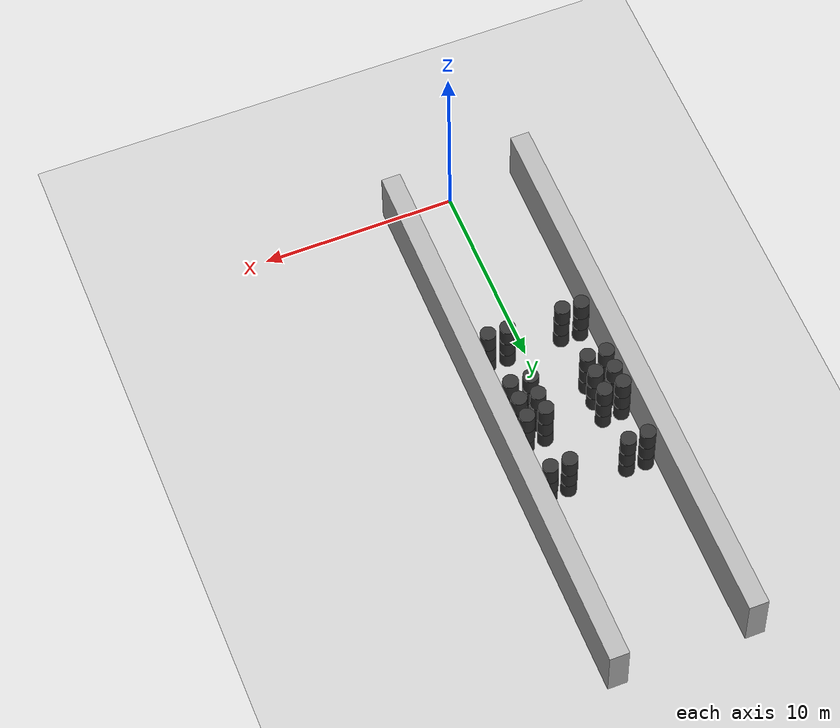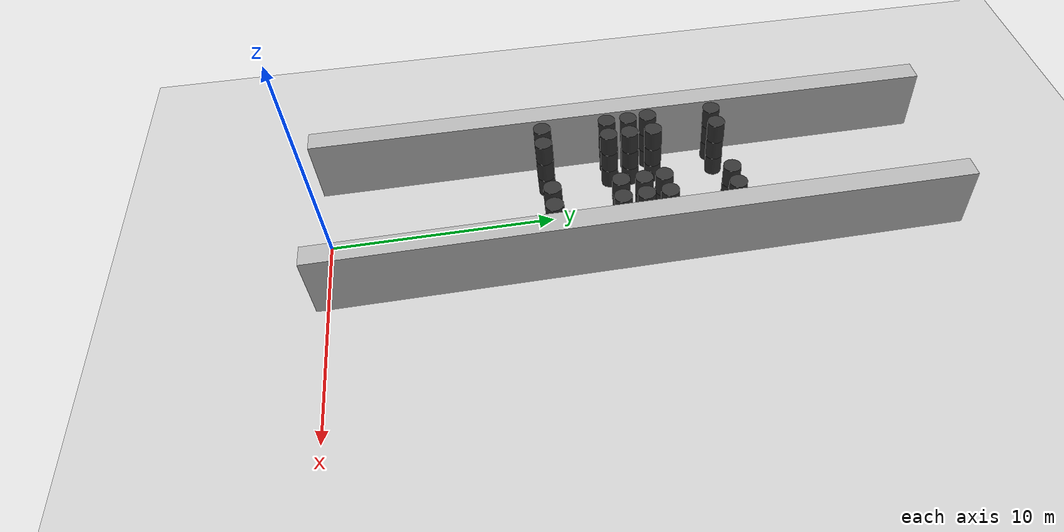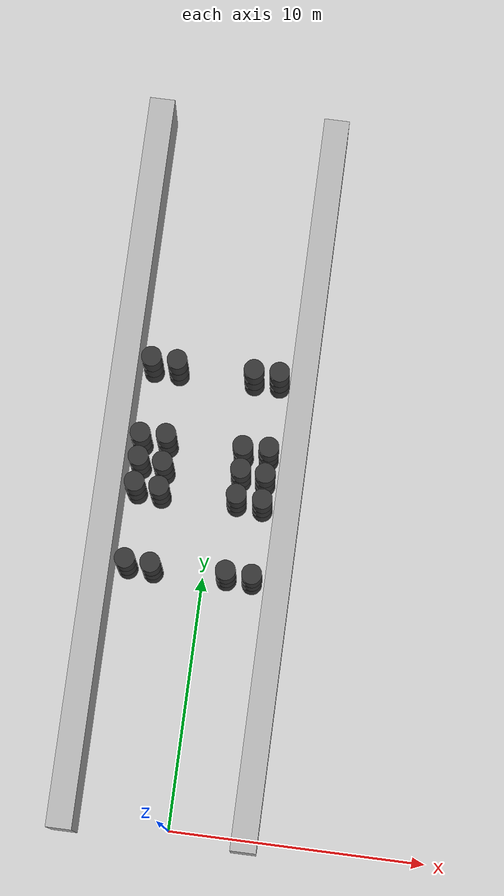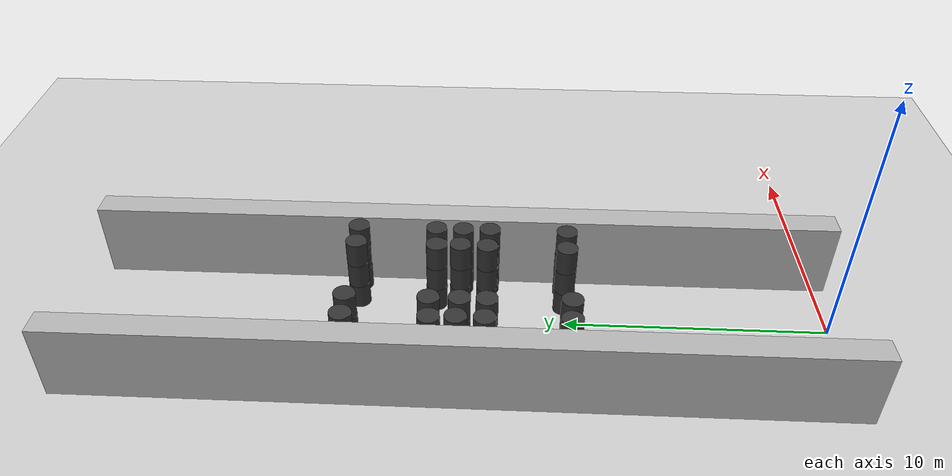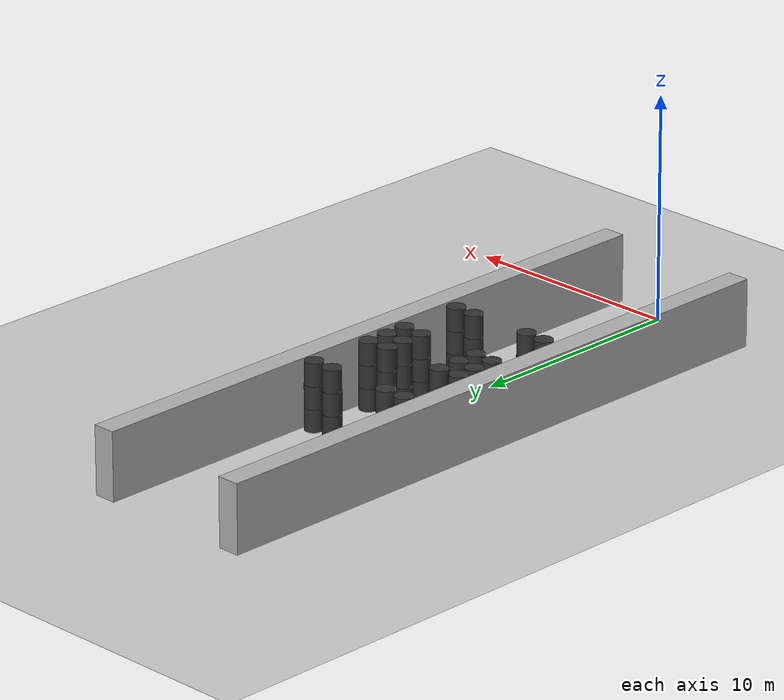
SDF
<sdf version="1.6">
 <world name="default">
  <include><uri>model://ground_plane</uri></include>
  <model name="wall_0">
   <pose frame="sim_world">-4.0 14.0 1.5 0 0 0</pose>
   <static>True</static>
   <link name="wall_0_link">
    <inertial>
     <mass>100</mass>
     <inertia>
      <ixx>0.166667</ixx>
      <ixy>0</ixy>
      <ixz>0</ixz>
      <iyy>0.166667</iyy>
      <iyz>0</iyz>
      <izz>0.166667</izz>
     </inertia>
    </inertial>
    <collision name="wall_0_collision">
     <geometry><box><size>1.0 29.0 3.0</size></box></geometry>
     <max_contacts>100</max_contacts>
    </collision>
    <visual name="wall_0_visual">
     <geometry><box><size>1.0 29.0 3.0</size></box></geometry>
     <material><ambient>0.7 0.7 0.7 1</ambient><diffuse>0.7 0.7 0.7 1</diffuse></material>
    </visual>
   </link>
  </model>
  <model name="wall_1">
   <pose frame="sim_world">3.0 14.0 1.5 0 0 0</pose>
   <static>True</static>
   <link name="wall_1_link">
    <inertial>
     <mass>100</mass>
     <inertia>
      <ixx>0.166667</ixx>
      <ixy>0</ixy>
      <ixz>0</ixz>
      <iyy>0.166667</iyy>
      <iyz>0</iyz>
      <izz>0.166667</izz>
     </inertia>
    </inertial>
    <collision name="wall_1_collision">
     <geometry><box><size>1.0 29.0 3.0</size></box></geometry>
     <max_contacts>100</max_contacts>
    </collision>
    <visual name="wall_1_visual">
     <geometry><box><size>1.0 29.0 3.0</size></box></geometry>
     <material><ambient>0.7 0.7 0.7 1</ambient><diffuse>0.7 0.7 0.7 1</diffuse></material>
    </visual>
   </link>
  </model>
  <model name="cylinder_15">
   <pose frame="sim_world">-2.95974717272 9.99762335335 0.5 0 -0 0</pose>
   <static>True</static>
   <link name="cylinder_15_link">
    <inertial>
     <mass>100</mass>
     <inertia><ixx>0.145833</ixx><ixy>0</ixy><ixz>0</ixz><iyy>0.145833</iyy><iyz>0</iyz><izz>0.125</izz></inertia>
    </inertial>
    <collision name="cylinder_15_collision">
     <geometry><cylinder><length>1.0</length><radius>0.4</radius></cylinder></geometry>
     <max_contacts>100</max_contacts>
    </collision>
    <visual name="cylinder_15_visual">
     <geometry><cylinder><length>1.0</length><radius>0.4</radius></cylinder></geometry>
     <material><ambient>0.2 0.2 0.2 1</ambient><diffuse>0.2 0.2 0.2 1</diffuse></material>
    </visual>
   </link>
  </model>
  <model name="cylinder_16">
   <pose frame="sim_world">-2.96733454405 10.0077599874 1.5 0 -0 0</pose>
   <static>True</static>
   <link name="cylinder_16_link">
    <inertial>
     <mass>100</mass>
     <inertia><ixx>0.145833</ixx><ixy>0</ixy><ixz>0</ixz><iyy>0.145833</iyy><iyz>0</iyz><izz>0.125</izz></inertia>
    </inertial>
    <collision name="cylinder_16_collision">
     <geometry><cylinder><length>1.0</length><radius>0.4</radius></cylinder></geometry>
     <max_contacts>100</max_contacts>
    </collision>
    <visual name="cylinder_16_visual">
     <geometry><cylinder><length>1.0</length><radius>0.4</radius></cylinder></geometry>
     <material><ambient>0.2 0.2 0.2 1</ambient><diffuse>0.2 0.2 0.2 1</diffuse></material>
    </visual>
   </link>
  </model>
  <model name="cylinder_17">
   <pose frame="sim_world">-2.9538205058 10.0074615674 2.5 0 -0 0</pose>
   <static>True</static>
   <link name="cylinder_17_link">
    <inertial>
     <mass>100</mass>
     <inertia><ixx>0.145833</ixx><ixy>0</ixy><ixz>0</ixz><iyy>0.145833</iyy><iyz>0</iyz><izz>0.125</izz></inertia>
    </inertial>
    <collision name="cylinder_17_collision">
     <geometry><cylinder><length>1.0</length><radius>0.4</radius></cylinder></geometry>
     <max_contacts>100</max_contacts>
    </collision>
    <visual name="cylinder_17_visual">
     <geometry><cylinder><length>1.0</length><radius>0.4</radius></cylinder></geometry>
     <material><ambient>0.2 0.2 0.2 1</ambient><diffuse>0.2 0.2 0.2 1</diffuse></material>
    </visual>
   </link>
  </model>
  <model name="cylinder_18">
   <pose frame="sim_world">-2.99630284277 13.0216252734 0.5 0 -0 0</pose>
   <static>True</static>
   <link name="cylinder_18_link">
    <inertial>
     <mass>100</mass>
     <inertia><ixx>0.145833</ixx><ixy>0</ixy><ixz>0</ixz><iyy>0.145833</iyy><iyz>0</iyz><izz>0.125</izz></inertia>
    </inertial>
    <collision name="cylinder_18_collision">
     <geometry><cylinder><length>1.0</length><radius>0.4</radius></cylinder></geometry>
     <max_contacts>100</max_contacts>
    </collision>
    <visual name="cylinder_18_visual">
     <geometry><cylinder><length>1.0</length><radius>0.4</radius></cylinder></geometry>
     <material><ambient>0.2 0.2 0.2 1</ambient><diffuse>0.2 0.2 0.2 1</diffuse></material>
    </visual>
   </link>
  </model>
  <model name="cylinder_19">
   <pose frame="sim_world">-3.01050325647 13.0122026184 1.5 0 -0 0</pose>
   <static>True</static>
   <link name="cylinder_19_link">
    <inertial>
     <mass>100</mass>
     <inertia><ixx>0.145833</ixx><ixy>0</ixy><ixz>0</ixz><iyy>0.145833</iyy><iyz>0</iyz><izz>0.125</izz></inertia>
    </inertial>
    <collision name="cylinder_19_collision">
     <geometry><cylinder><length>1.0</length><radius>0.4</radius></cylinder></geometry>
     <max_contacts>100</max_contacts>
    </collision>
    <visual name="cylinder_19_visual">
     <geometry><cylinder><length>1.0</length><radius>0.4</radius></cylinder></geometry>
     <material><ambient>0.2 0.2 0.2 1</ambient><diffuse>0.2 0.2 0.2 1</diffuse></material>
    </visual>
   </link>
  </model>
  <model name="cylinder_20">
   <pose frame="sim_world">-2.99424971212 13.0228038659 2.5 0 -0 0</pose>
   <static>True</static>
   <link name="cylinder_20_link">
    <inertial>
     <mass>100</mass>
     <inertia><ixx>0.145833</ixx><ixy>0</ixy><ixz>0</ixz><iyy>0.145833</iyy><iyz>0</iyz><izz>0.125</izz></inertia>
    </inertial>
    <collision name="cylinder_20_collision">
     <geometry><cylinder><length>1.0</length><radius>0.4</radius></cylinder></geometry>
     <max_contacts>100</max_contacts>
    </collision>
    <visual name="cylinder_20_visual">
     <geometry><cylinder><length>1.0</length><radius>0.4</radius></cylinder></geometry>
     <material><ambient>0.2 0.2 0.2 1</ambient><diffuse>0.2 0.2 0.2 1</diffuse></material>
    </visual>
   </link>
  </model>
  <model name="cylinder_21">
   <pose frame="sim_world">-2.98432138656 14.0504166469 0.5 0 -0 0</pose>
   <static>True</static>
   <link name="cylinder_21_link">
    <inertial>
     <mass>100</mass>
     <inertia><ixx>0.145833</ixx><ixy>0</ixy><ixz>0</ixz><iyy>0.145833</iyy><iyz>0</iyz><izz>0.125</izz></inertia>
    </inertial>
    <collision name="cylinder_21_collision">
     <geometry><cylinder><length>1.0</length><radius>0.4</radius></cylinder></geometry>
     <max_contacts>100</max_contacts>
    </collision>
    <visual name="cylinder_21_visual">
     <geometry><cylinder><length>1.0</length><radius>0.4</radius></cylinder></geometry>
     <material><ambient>0.2 0.2 0.2 1</ambient><diffuse>0.2 0.2 0.2 1</diffuse></material>
    </visual>
   </link>
  </model>
  <model name="cylinder_22">
   <pose frame="sim_world">-2.98310022397 14.0452732466 1.5 0 -0 0</pose>
   <static>True</static>
   <link name="cylinder_22_link">
    <inertial>
     <mass>100</mass>
     <inertia><ixx>0.145833</ixx><ixy>0</ixy><ixz>0</ixz><iyy>0.145833</iyy><iyz>0</iyz><izz>0.125</izz></inertia>
    </inertial>
    <collision name="cylinder_22_collision">
     <geometry><cylinder><length>1.0</length><radius>0.4</radius></cylinder></geometry>
     <max_contacts>100</max_contacts>
    </collision>
    <visual name="cylinder_22_visual">
     <geometry><cylinder><length>1.0</length><radius>0.4</radius></cylinder></geometry>
     <material><ambient>0.2 0.2 0.2 1</ambient><diffuse>0.2 0.2 0.2 1</diffuse></material>
    </visual>
   </link>
  </model>
  <model name="cylinder_23">
   <pose frame="sim_world">-2.98236017431 14.0354608389 2.5 0 -0 0</pose>
   <static>True</static>
   <link name="cylinder_23_link">
    <inertial>
     <mass>100</mass>
     <inertia><ixx>0.145833</ixx><ixy>0</ixy><ixz>0</ixz><iyy>0.145833</iyy><iyz>0</iyz><izz>0.125</izz></inertia>
    </inertial>
    <collision name="cylinder_23_collision">
     <geometry><cylinder><length>1.0</length><radius>0.4</radius></cylinder></geometry>
     <max_contacts>100</max_contacts>
    </collision>
    <visual name="cylinder_23_visual">
     <geometry><cylinder><length>1.0</length><radius>0.4</radius></cylinder></geometry>
     <material><ambient>0.2 0.2 0.2 1</ambient><diffuse>0.2 0.2 0.2 1</diffuse></material>
    </visual>
   </link>
  </model>
  <model name="cylinder_24">
   <pose frame="sim_world">-3.042406147 14.9754270639 0.5 0 -0 0</pose>
   <static>True</static>
   <link name="cylinder_24_link">
    <inertial>
     <mass>100</mass>
     <inertia><ixx>0.145833</ixx><ixy>0</ixy><ixz>0</ixz><iyy>0.145833</iyy><iyz>0</iyz><izz>0.125</izz></inertia>
    </inertial>
    <collision name="cylinder_24_collision">
     <geometry><cylinder><length>1.0</length><radius>0.4</radius></cylinder></geometry>
     <max_contacts>100</max_contacts>
    </collision>
    <visual name="cylinder_24_visual">
     <geometry><cylinder><length>1.0</length><radius>0.4</radius></cylinder></geometry>
     <material><ambient>0.2 0.2 0.2 1</ambient><diffuse>0.2 0.2 0.2 1</diffuse></material>
    </visual>
   </link>
  </model>
  <model name="cylinder_25">
   <pose frame="sim_world">-3.04206244545 14.9629978575 1.5 0 -0 0</pose>
   <static>True</static>
   <link name="cylinder_25_link">
    <inertial>
     <mass>100</mass>
     <inertia><ixx>0.145833</ixx><ixy>0</ixy><ixz>0</ixz><iyy>0.145833</iyy><iyz>0</iyz><izz>0.125</izz></inertia>
    </inertial>
    <collision name="cylinder_25_collision">
     <geometry><cylinder><length>1.0</length><radius>0.4</radius></cylinder></geometry>
     <max_contacts>100</max_contacts>
    </collision>
    <visual name="cylinder_25_visual">
     <geometry><cylinder><length>1.0</length><radius>0.4</radius></cylinder></geometry>
     <material><ambient>0.2 0.2 0.2 1</ambient><diffuse>0.2 0.2 0.2 1</diffuse></material>
    </visual>
   </link>
  </model>
  <model name="cylinder_26">
   <pose frame="sim_world">-3.03224205885 14.9648059669 2.5 0 -0 0</pose>
   <static>True</static>
   <link name="cylinder_26_link">
    <inertial>
     <mass>100</mass>
     <inertia><ixx>0.145833</ixx><ixy>0</ixy><ixz>0</ixz><iyy>0.145833</iyy><iyz>0</iyz><izz>0.125</izz></inertia>
    </inertial>
    <collision name="cylinder_26_collision">
     <geometry><cylinder><length>1.0</length><radius>0.4</radius></cylinder></geometry>
     <max_contacts>100</max_contacts>
    </collision>
    <visual name="cylinder_26_visual">
     <geometry><cylinder><length>1.0</length><radius>0.4</radius></cylinder></geometry>
     <material><ambient>0.2 0.2 0.2 1</ambient><diffuse>0.2 0.2 0.2 1</diffuse></material>
    </visual>
   </link>
  </model>
  <model name="cylinder_27">
   <pose frame="sim_world">-3.00701187167 18.023755769 0.5 0 -0 0</pose>
   <static>True</static>
   <link name="cylinder_27_link">
    <inertial>
     <mass>100</mass>
     <inertia><ixx>0.145833</ixx><ixy>0</ixy><ixz>0</ixz><iyy>0.145833</iyy><iyz>0</iyz><izz>0.125</izz></inertia>
    </inertial>
    <collision name="cylinder_27_collision">
     <geometry><cylinder><length>1.0</length><radius>0.4</radius></cylinder></geometry>
     <max_contacts>100</max_contacts>
    </collision>
    <visual name="cylinder_27_visual">
     <geometry><cylinder><length>1.0</length><radius>0.4</radius></cylinder></geometry>
     <material><ambient>0.2 0.2 0.2 1</ambient><diffuse>0.2 0.2 0.2 1</diffuse></material>
    </visual>
   </link>
  </model>
  <model name="cylinder_28">
   <pose frame="sim_world">-3.00248028948 18.0226749165 1.5 0 -0 0</pose>
   <static>True</static>
   <link name="cylinder_28_link">
    <inertial>
     <mass>100</mass>
     <inertia><ixx>0.145833</ixx><ixy>0</ixy><ixz>0</ixz><iyy>0.145833</iyy><iyz>0</iyz><izz>0.125</izz></inertia>
    </inertial>
    <collision name="cylinder_28_collision">
     <geometry><cylinder><length>1.0</length><radius>0.4</radius></cylinder></geometry>
     <max_contacts>100</max_contacts>
    </collision>
    <visual name="cylinder_28_visual">
     <geometry><cylinder><length>1.0</length><radius>0.4</radius></cylinder></geometry>
     <material><ambient>0.2 0.2 0.2 1</ambient><diffuse>0.2 0.2 0.2 1</diffuse></material>
    </visual>
   </link>
  </model>
  <model name="cylinder_29">
   <pose frame="sim_world">-3.00870383393 18.0157991154 2.5 0 -0 0</pose>
   <static>True</static>
   <link name="cylinder_29_link">
    <inertial>
     <mass>100</mass>
     <inertia><ixx>0.145833</ixx><ixy>0</ixy><ixz>0</ixz><iyy>0.145833</iyy><iyz>0</iyz><izz>0.125</izz></inertia>
    </inertial>
    <collision name="cylinder_29_collision">
     <geometry><cylinder><length>1.0</length><radius>0.4</radius></cylinder></geometry>
     <max_contacts>100</max_contacts>
    </collision>
    <visual name="cylinder_29_visual">
     <geometry><cylinder><length>1.0</length><radius>0.4</radius></cylinder></geometry>
     <material><ambient>0.2 0.2 0.2 1</ambient><diffuse>0.2 0.2 0.2 1</diffuse></material>
    </visual>
   </link>
  </model>
  <model name="cylinder_60">
   <pose frame="sim_world">-1.94897852264 9.95703798212 0.5 0 -0 0</pose>
   <static>True</static>
   <link name="cylinder_60_link">
    <inertial>
     <mass>100</mass>
     <inertia><ixx>0.145833</ixx><ixy>0</ixy><ixz>0</ixz><iyy>0.145833</iyy><iyz>0</iyz><izz>0.125</izz></inertia>
    </inertial>
    <collision name="cylinder_60_collision">
     <geometry><cylinder><length>1.0</length><radius>0.4</radius></cylinder></geometry>
     <max_contacts>100</max_contacts>
    </collision>
    <visual name="cylinder_60_visual">
     <geometry><cylinder><length>1.0</length><radius>0.4</radius></cylinder></geometry>
     <material><ambient>0.2 0.2 0.2 1</ambient><diffuse>0.2 0.2 0.2 1</diffuse></material>
    </visual>
   </link>
  </model>
  <model name="cylinder_61">
   <pose frame="sim_world">-1.9451901812 9.95248629912 1.5 0 -0 0</pose>
   <static>True</static>
   <link name="cylinder_61_link">
    <inertial>
     <mass>100</mass>
     <inertia><ixx>0.145833</ixx><ixy>0</ixy><ixz>0</ixz><iyy>0.145833</iyy><iyz>0</iyz><izz>0.125</izz></inertia>
    </inertial>
    <collision name="cylinder_61_collision">
     <geometry><cylinder><length>1.0</length><radius>0.4</radius></cylinder></geometry>
     <max_contacts>100</max_contacts>
    </collision>
    <visual name="cylinder_61_visual">
     <geometry><cylinder><length>1.0</length><radius>0.4</radius></cylinder></geometry>
     <material><ambient>0.2 0.2 0.2 1</ambient><diffuse>0.2 0.2 0.2 1</diffuse></material>
    </visual>
   </link>
  </model>
  <model name="cylinder_62">
   <pose frame="sim_world">-1.96005169756 9.96399949782 2.5 0 -0 0</pose>
   <static>True</static>
   <link name="cylinder_62_link">
    <inertial>
     <mass>100</mass>
     <inertia><ixx>0.145833</ixx><ixy>0</ixy><ixz>0</ixz><iyy>0.145833</iyy><iyz>0</iyz><izz>0.125</izz></inertia>
    </inertial>
    <collision name="cylinder_62_collision">
     <geometry><cylinder><length>1.0</length><radius>0.4</radius></cylinder></geometry>
     <max_contacts>100</max_contacts>
    </collision>
    <visual name="cylinder_62_visual">
     <geometry><cylinder><length>1.0</length><radius>0.4</radius></cylinder></geometry>
     <material><ambient>0.2 0.2 0.2 1</ambient><diffuse>0.2 0.2 0.2 1</diffuse></material>
    </visual>
   </link>
  </model>
  <model name="cylinder_63">
   <pose frame="sim_world">-2.03606219713 12.9707468926 0.5 0 -0 0</pose>
   <static>True</static>
   <link name="cylinder_63_link">
    <inertial>
     <mass>100</mass>
     <inertia><ixx>0.145833</ixx><ixy>0</ixy><ixz>0</ixz><iyy>0.145833</iyy><iyz>0</iyz><izz>0.125</izz></inertia>
    </inertial>
    <collision name="cylinder_63_collision">
     <geometry><cylinder><length>1.0</length><radius>0.4</radius></cylinder></geometry>
     <max_contacts>100</max_contacts>
    </collision>
    <visual name="cylinder_63_visual">
     <geometry><cylinder><length>1.0</length><radius>0.4</radius></cylinder></geometry>
     <material><ambient>0.2 0.2 0.2 1</ambient><diffuse>0.2 0.2 0.2 1</diffuse></material>
    </visual>
   </link>
  </model>
  <model name="cylinder_64">
   <pose frame="sim_world">-2.04289103986 12.9710435726 1.5 0 -0 0</pose>
   <static>True</static>
   <link name="cylinder_64_link">
    <inertial>
     <mass>100</mass>
     <inertia><ixx>0.145833</ixx><ixy>0</ixy><ixz>0</ixz><iyy>0.145833</iyy><iyz>0</iyz><izz>0.125</izz></inertia>
    </inertial>
    <collision name="cylinder_64_collision">
     <geometry><cylinder><length>1.0</length><radius>0.4</radius></cylinder></geometry>
     <max_contacts>100</max_contacts>
    </collision>
    <visual name="cylinder_64_visual">
     <geometry><cylinder><length>1.0</length><radius>0.4</radius></cylinder></geometry>
     <material><ambient>0.2 0.2 0.2 1</ambient><diffuse>0.2 0.2 0.2 1</diffuse></material>
    </visual>
   </link>
  </model>
  <model name="cylinder_65">
   <pose frame="sim_world">-2.03231655898 12.9653077057 2.5 0 -0 0</pose>
   <static>True</static>
   <link name="cylinder_65_link">
    <inertial>
     <mass>100</mass>
     <inertia><ixx>0.145833</ixx><ixy>0</ixy><ixz>0</ixz><iyy>0.145833</iyy><iyz>0</iyz><izz>0.125</izz></inertia>
    </inertial>
    <collision name="cylinder_65_collision">
     <geometry><cylinder><length>1.0</length><radius>0.4</radius></cylinder></geometry>
     <max_contacts>100</max_contacts>
    </collision>
    <visual name="cylinder_65_visual">
     <geometry><cylinder><length>1.0</length><radius>0.4</radius></cylinder></geometry>
     <material><ambient>0.2 0.2 0.2 1</ambient><diffuse>0.2 0.2 0.2 1</diffuse></material>
    </visual>
   </link>
  </model>
  <model name="cylinder_66">
   <pose frame="sim_world">-2.01901533279 13.9433417719 0.5 0 -0 0</pose>
   <static>True</static>
   <link name="cylinder_66_link">
    <inertial>
     <mass>100</mass>
     <inertia><ixx>0.145833</ixx><ixy>0</ixy><ixz>0</ixz><iyy>0.145833</iyy><iyz>0</iyz><izz>0.125</izz></inertia>
    </inertial>
    <collision name="cylinder_66_collision">
     <geometry><cylinder><length>1.0</length><radius>0.4</radius></cylinder></geometry>
     <max_contacts>100</max_contacts>
    </collision>
    <visual name="cylinder_66_visual">
     <geometry><cylinder><length>1.0</length><radius>0.4</radius></cylinder></geometry>
     <material><ambient>0.2 0.2 0.2 1</ambient><diffuse>0.2 0.2 0.2 1</diffuse></material>
    </visual>
   </link>
  </model>
  <model name="cylinder_67">
   <pose frame="sim_world">-2.01509976433 13.9500614953 1.5 0 -0 0</pose>
   <static>True</static>
   <link name="cylinder_67_link">
    <inertial>
     <mass>100</mass>
     <inertia><ixx>0.145833</ixx><ixy>0</ixy><ixz>0</ixz><iyy>0.145833</iyy><iyz>0</iyz><izz>0.125</izz></inertia>
    </inertial>
    <collision name="cylinder_67_collision">
     <geometry><cylinder><length>1.0</length><radius>0.4</radius></cylinder></geometry>
     <max_contacts>100</max_contacts>
    </collision>
    <visual name="cylinder_67_visual">
     <geometry><cylinder><length>1.0</length><radius>0.4</radius></cylinder></geometry>
     <material><ambient>0.2 0.2 0.2 1</ambient><diffuse>0.2 0.2 0.2 1</diffuse></material>
    </visual>
   </link>
  </model>
  <model name="cylinder_68">
   <pose frame="sim_world">-2.02384383003 13.9440557648 2.5 0 -0 0</pose>
   <static>True</static>
   <link name="cylinder_68_link">
    <inertial>
     <mass>100</mass>
     <inertia><ixx>0.145833</ixx><ixy>0</ixy><ixz>0</ixz><iyy>0.145833</iyy><iyz>0</iyz><izz>0.125</izz></inertia>
    </inertial>
    <collision name="cylinder_68_collision">
     <geometry><cylinder><length>1.0</length><radius>0.4</radius></cylinder></geometry>
     <max_contacts>100</max_contacts>
    </collision>
    <visual name="cylinder_68_visual">
     <geometry><cylinder><length>1.0</length><radius>0.4</radius></cylinder></geometry>
     <material><ambient>0.2 0.2 0.2 1</ambient><diffuse>0.2 0.2 0.2 1</diffuse></material>
    </visual>
   </link>
  </model>
  <model name="cylinder_69">
   <pose frame="sim_world">-2.03663103005 15.0308804364 0.5 0 -0 0</pose>
   <static>True</static>
   <link name="cylinder_69_link">
    <inertial>
     <mass>100</mass>
     <inertia><ixx>0.145833</ixx><ixy>0</ixy><ixz>0</ixz><iyy>0.145833</iyy><iyz>0</iyz><izz>0.125</izz></inertia>
    </inertial>
    <collision name="cylinder_69_collision">
     <geometry><cylinder><length>1.0</length><radius>0.4</radius></cylinder></geometry>
     <max_contacts>100</max_contacts>
    </collision>
    <visual name="cylinder_69_visual">
     <geometry><cylinder><length>1.0</length><radius>0.4</radius></cylinder></geometry>
     <material><ambient>0.2 0.2 0.2 1</ambient><diffuse>0.2 0.2 0.2 1</diffuse></material>
    </visual>
   </link>
  </model>
  <model name="cylinder_70">
   <pose frame="sim_world">-2.03726614534 15.0347342657 1.5 0 -0 0</pose>
   <static>True</static>
   <link name="cylinder_70_link">
    <inertial>
     <mass>100</mass>
     <inertia><ixx>0.145833</ixx><ixy>0</ixy><ixz>0</ixz><iyy>0.145833</iyy><iyz>0</iyz><izz>0.125</izz></inertia>
    </inertial>
    <collision name="cylinder_70_collision">
     <geometry><cylinder><length>1.0</length><radius>0.4</radius></cylinder></geometry>
     <max_contacts>100</max_contacts>
    </collision>
    <visual name="cylinder_70_visual">
     <geometry><cylinder><length>1.0</length><radius>0.4</radius></cylinder></geometry>
     <material><ambient>0.2 0.2 0.2 1</ambient><diffuse>0.2 0.2 0.2 1</diffuse></material>
    </visual>
   </link>
  </model>
  <model name="cylinder_71">
   <pose frame="sim_world">-2.03246359126 15.0422147881 2.5 0 -0 0</pose>
   <static>True</static>
   <link name="cylinder_71_link">
    <inertial>
     <mass>100</mass>
     <inertia><ixx>0.145833</ixx><ixy>0</ixy><ixz>0</ixz><iyy>0.145833</iyy><iyz>0</iyz><izz>0.125</izz></inertia>
    </inertial>
    <collision name="cylinder_71_collision">
     <geometry><cylinder><length>1.0</length><radius>0.4</radius></cylinder></geometry>
     <max_contacts>100</max_contacts>
    </collision>
    <visual name="cylinder_71_visual">
     <geometry><cylinder><length>1.0</length><radius>0.4</radius></cylinder></geometry>
     <material><ambient>0.2 0.2 0.2 1</ambient><diffuse>0.2 0.2 0.2 1</diffuse></material>
    </visual>
   </link>
  </model>
  <model name="cylinder_72">
   <pose frame="sim_world">-1.99405952904 18.0185740977 0.5 0 -0 0</pose>
   <static>True</static>
   <link name="cylinder_72_link">
    <inertial>
     <mass>100</mass>
     <inertia><ixx>0.145833</ixx><ixy>0</ixy><ixz>0</ixz><iyy>0.145833</iyy><iyz>0</iyz><izz>0.125</izz></inertia>
    </inertial>
    <collision name="cylinder_72_collision">
     <geometry><cylinder><length>1.0</length><radius>0.4</radius></cylinder></geometry>
     <max_contacts>100</max_contacts>
    </collision>
    <visual name="cylinder_72_visual">
     <geometry><cylinder><length>1.0</length><radius>0.4</radius></cylinder></geometry>
     <material><ambient>0.2 0.2 0.2 1</ambient><diffuse>0.2 0.2 0.2 1</diffuse></material>
    </visual>
   </link>
  </model>
  <model name="cylinder_73">
   <pose frame="sim_world">-1.99090825696 18.0053289946 1.5 0 -0 0</pose>
   <static>True</static>
   <link name="cylinder_73_link">
    <inertial>
     <mass>100</mass>
     <inertia><ixx>0.145833</ixx><ixy>0</ixy><ixz>0</ixz><iyy>0.145833</iyy><iyz>0</iyz><izz>0.125</izz></inertia>
    </inertial>
    <collision name="cylinder_73_collision">
     <geometry><cylinder><length>1.0</length><radius>0.4</radius></cylinder></geometry>
     <max_contacts>100</max_contacts>
    </collision>
    <visual name="cylinder_73_visual">
     <geometry><cylinder><length>1.0</length><radius>0.4</radius></cylinder></geometry>
     <material><ambient>0.2 0.2 0.2 1</ambient><diffuse>0.2 0.2 0.2 1</diffuse></material>
    </visual>
   </link>
  </model>
  <model name="cylinder_74">
   <pose frame="sim_world">-1.99715825339 18.0167414731 2.5 0 -0 0</pose>
   <static>True</static>
   <link name="cylinder_74_link">
    <inertial>
     <mass>100</mass>
     <inertia><ixx>0.145833</ixx><ixy>0</ixy><ixz>0</ixz><iyy>0.145833</iyy><iyz>0</iyz><izz>0.125</izz></inertia>
    </inertial>
    <collision name="cylinder_74_collision">
     <geometry><cylinder><length>1.0</length><radius>0.4</radius></cylinder></geometry>
     <max_contacts>100</max_contacts>
    </collision>
    <visual name="cylinder_74_visual">
     <geometry><cylinder><length>1.0</length><radius>0.4</radius></cylinder></geometry>
     <material><ambient>0.2 0.2 0.2 1</ambient><diffuse>0.2 0.2 0.2 1</diffuse></material>
    </visual>
   </link>
  </model>
  <model name="cylinder_105">
   <pose frame="sim_world">0.948998671866 10.0154101619 0.5 0 -0 0</pose>
   <static>True</static>
   <link name="cylinder_105_link">
    <inertial>
     <mass>100</mass>
     <inertia><ixx>0.145833</ixx><ixy>0</ixy><ixz>0</ixz><iyy>0.145833</iyy><iyz>0</iyz><izz>0.125</izz></inertia>
    </inertial>
    <collision name="cylinder_105_collision">
     <geometry><cylinder><length>1.0</length><radius>0.4</radius></cylinder></geometry>
     <max_contacts>100</max_contacts>
    </collision>
    <visual name="cylinder_105_visual">
     <geometry><cylinder><length>1.0</length><radius>0.4</radius></cylinder></geometry>
     <material><ambient>0.2 0.2 0.2 1</ambient><diffuse>0.2 0.2 0.2 1</diffuse></material>
    </visual>
   </link>
  </model>
  <model name="cylinder_106">
   <pose frame="sim_world">0.958469642846 10.0231147059 1.5 0 -0 0</pose>
   <static>True</static>
   <link name="cylinder_106_link">
    <inertial>
     <mass>100</mass>
     <inertia><ixx>0.145833</ixx><ixy>0</ixy><ixz>0</ixz><iyy>0.145833</iyy><iyz>0</iyz><izz>0.125</izz></inertia>
    </inertial>
    <collision name="cylinder_106_collision">
     <geometry><cylinder><length>1.0</length><radius>0.4</radius></cylinder></geometry>
     <max_contacts>100</max_contacts>
    </collision>
    <visual name="cylinder_106_visual">
     <geometry><cylinder><length>1.0</length><radius>0.4</radius></cylinder></geometry>
     <material><ambient>0.2 0.2 0.2 1</ambient><diffuse>0.2 0.2 0.2 1</diffuse></material>
    </visual>
   </link>
  </model>
  <model name="cylinder_107">
   <pose frame="sim_world">0.95387372632 10.0229478934 2.5 0 -0 0</pose>
   <static>True</static>
   <link name="cylinder_107_link">
    <inertial>
     <mass>100</mass>
     <inertia><ixx>0.145833</ixx><ixy>0</ixy><ixz>0</ixz><iyy>0.145833</iyy><iyz>0</iyz><izz>0.125</izz></inertia>
    </inertial>
    <collision name="cylinder_107_collision">
     <geometry><cylinder><length>1.0</length><radius>0.4</radius></cylinder></geometry>
     <max_contacts>100</max_contacts>
    </collision>
    <visual name="cylinder_107_visual">
     <geometry><cylinder><length>1.0</length><radius>0.4</radius></cylinder></geometry>
     <material><ambient>0.2 0.2 0.2 1</ambient><diffuse>0.2 0.2 0.2 1</diffuse></material>
    </visual>
   </link>
  </model>
  <model name="cylinder_108">
   <pose frame="sim_world">0.971334523445 13.0253281531 0.5 0 -0 0</pose>
   <static>True</static>
   <link name="cylinder_108_link">
    <inertial>
     <mass>100</mass>
     <inertia><ixx>0.145833</ixx><ixy>0</ixy><ixz>0</ixz><iyy>0.145833</iyy><iyz>0</iyz><izz>0.125</izz></inertia>
    </inertial>
    <collision name="cylinder_108_collision">
     <geometry><cylinder><length>1.0</length><radius>0.4</radius></cylinder></geometry>
     <max_contacts>100</max_contacts>
    </collision>
    <visual name="cylinder_108_visual">
     <geometry><cylinder><length>1.0</length><radius>0.4</radius></cylinder></geometry>
     <material><ambient>0.2 0.2 0.2 1</ambient><diffuse>0.2 0.2 0.2 1</diffuse></material>
    </visual>
   </link>
  </model>
  <model name="cylinder_109">
   <pose frame="sim_world">0.983166930226 13.0230639042 1.5 0 -0 0</pose>
   <static>True</static>
   <link name="cylinder_109_link">
    <inertial>
     <mass>100</mass>
     <inertia><ixx>0.145833</ixx><ixy>0</ixy><ixz>0</ixz><iyy>0.145833</iyy><iyz>0</iyz><izz>0.125</izz></inertia>
    </inertial>
    <collision name="cylinder_109_collision">
     <geometry><cylinder><length>1.0</length><radius>0.4</radius></cylinder></geometry>
     <max_contacts>100</max_contacts>
    </collision>
    <visual name="cylinder_109_visual">
     <geometry><cylinder><length>1.0</length><radius>0.4</radius></cylinder></geometry>
     <material><ambient>0.2 0.2 0.2 1</ambient><diffuse>0.2 0.2 0.2 1</diffuse></material>
    </visual>
   </link>
  </model>
  <model name="cylinder_110">
   <pose frame="sim_world">0.984909613928 13.029854915 2.5 0 -0 0</pose>
   <static>True</static>
   <link name="cylinder_110_link">
    <inertial>
     <mass>100</mass>
     <inertia><ixx>0.145833</ixx><ixy>0</ixy><ixz>0</ixz><iyy>0.145833</iyy><iyz>0</iyz><izz>0.125</izz></inertia>
    </inertial>
    <collision name="cylinder_110_collision">
     <geometry><cylinder><length>1.0</length><radius>0.4</radius></cylinder></geometry>
     <max_contacts>100</max_contacts>
    </collision>
    <visual name="cylinder_110_visual">
     <geometry><cylinder><length>1.0</length><radius>0.4</radius></cylinder></geometry>
     <material><ambient>0.2 0.2 0.2 1</ambient><diffuse>0.2 0.2 0.2 1</diffuse></material>
    </visual>
   </link>
  </model>
  <model name="cylinder_111">
   <pose frame="sim_world">1.01666655012 14.0469767481 0.5 0 -0 0</pose>
   <static>True</static>
   <link name="cylinder_111_link">
    <inertial>
     <mass>100</mass>
     <inertia><ixx>0.145833</ixx><ixy>0</ixy><ixz>0</ixz><iyy>0.145833</iyy><iyz>0</iyz><izz>0.125</izz></inertia>
    </inertial>
    <collision name="cylinder_111_collision">
     <geometry><cylinder><length>1.0</length><radius>0.4</radius></cylinder></geometry>
     <max_contacts>100</max_contacts>
    </collision>
    <visual name="cylinder_111_visual">
     <geometry><cylinder><length>1.0</length><radius>0.4</radius></cylinder></geometry>
     <material><ambient>0.2 0.2 0.2 1</ambient><diffuse>0.2 0.2 0.2 1</diffuse></material>
    </visual>
   </link>
  </model>
  <model name="cylinder_112">
   <pose frame="sim_world">1.02559655093 14.0395649042 1.5 0 -0 0</pose>
   <static>True</static>
   <link name="cylinder_112_link">
    <inertial>
     <mass>100</mass>
     <inertia><ixx>0.145833</ixx><ixy>0</ixy><ixz>0</ixz><iyy>0.145833</iyy><iyz>0</iyz><izz>0.125</izz></inertia>
    </inertial>
    <collision name="cylinder_112_collision">
     <geometry><cylinder><length>1.0</length><radius>0.4</radius></cylinder></geometry>
     <max_contacts>100</max_contacts>
    </collision>
    <visual name="cylinder_112_visual">
     <geometry><cylinder><length>1.0</length><radius>0.4</radius></cylinder></geometry>
     <material><ambient>0.2 0.2 0.2 1</ambient><diffuse>0.2 0.2 0.2 1</diffuse></material>
    </visual>
   </link>
  </model>
  <model name="cylinder_113">
   <pose frame="sim_world">1.0203901586 14.0457789969 2.5 0 -0 0</pose>
   <static>True</static>
   <link name="cylinder_113_link">
    <inertial>
     <mass>100</mass>
     <inertia><ixx>0.145833</ixx><ixy>0</ixy><ixz>0</ixz><iyy>0.145833</iyy><iyz>0</iyz><izz>0.125</izz></inertia>
    </inertial>
    <collision name="cylinder_113_collision">
     <geometry><cylinder><length>1.0</length><radius>0.4</radius></cylinder></geometry>
     <max_contacts>100</max_contacts>
    </collision>
    <visual name="cylinder_113_visual">
     <geometry><cylinder><length>1.0</length><radius>0.4</radius></cylinder></geometry>
     <material><ambient>0.2 0.2 0.2 1</ambient><diffuse>0.2 0.2 0.2 1</diffuse></material>
    </visual>
   </link>
  </model>
  <model name="cylinder_114">
   <pose frame="sim_world">0.996124343455 14.9641726461 0.5 0 -0 0</pose>
   <static>True</static>
   <link name="cylinder_114_link">
    <inertial>
     <mass>100</mass>
     <inertia><ixx>0.145833</ixx><ixy>0</ixy><ixz>0</ixz><iyy>0.145833</iyy><iyz>0</iyz><izz>0.125</izz></inertia>
    </inertial>
    <collision name="cylinder_114_collision">
     <geometry><cylinder><length>1.0</length><radius>0.4</radius></cylinder></geometry>
     <max_contacts>100</max_contacts>
    </collision>
    <visual name="cylinder_114_visual">
     <geometry><cylinder><length>1.0</length><radius>0.4</radius></cylinder></geometry>
     <material><ambient>0.2 0.2 0.2 1</ambient><diffuse>0.2 0.2 0.2 1</diffuse></material>
    </visual>
   </link>
  </model>
  <model name="cylinder_115">
   <pose frame="sim_world">0.999136476392 14.9554492704 1.5 0 -0 0</pose>
   <static>True</static>
   <link name="cylinder_115_link">
    <inertial>
     <mass>100</mass>
     <inertia><ixx>0.145833</ixx><ixy>0</ixy><ixz>0</ixz><iyy>0.145833</iyy><iyz>0</iyz><izz>0.125</izz></inertia>
    </inertial>
    <collision name="cylinder_115_collision">
     <geometry><cylinder><length>1.0</length><radius>0.4</radius></cylinder></geometry>
     <max_contacts>100</max_contacts>
    </collision>
    <visual name="cylinder_115_visual">
     <geometry><cylinder><length>1.0</length><radius>0.4</radius></cylinder></geometry>
     <material><ambient>0.2 0.2 0.2 1</ambient><diffuse>0.2 0.2 0.2 1</diffuse></material>
    </visual>
   </link>
  </model>
  <model name="cylinder_116">
   <pose frame="sim_world">0.986905610443 14.9516393344 2.5 0 -0 0</pose>
   <static>True</static>
   <link name="cylinder_116_link">
    <inertial>
     <mass>100</mass>
     <inertia><ixx>0.145833</ixx><ixy>0</ixy><ixz>0</ixz><iyy>0.145833</iyy><iyz>0</iyz><izz>0.125</izz></inertia>
    </inertial>
    <collision name="cylinder_116_collision">
     <geometry><cylinder><length>1.0</length><radius>0.4</radius></cylinder></geometry>
     <max_contacts>100</max_contacts>
    </collision>
    <visual name="cylinder_116_visual">
     <geometry><cylinder><length>1.0</length><radius>0.4</radius></cylinder></geometry>
     <material><ambient>0.2 0.2 0.2 1</ambient><diffuse>0.2 0.2 0.2 1</diffuse></material>
    </visual>
   </link>
  </model>
  <model name="cylinder_117">
   <pose frame="sim_world">1.04102514024 17.9963291876 0.5 0 -0 0</pose>
   <static>True</static>
   <link name="cylinder_117_link">
    <inertial>
     <mass>100</mass>
     <inertia><ixx>0.145833</ixx><ixy>0</ixy><ixz>0</ixz><iyy>0.145833</iyy><iyz>0</iyz><izz>0.125</izz></inertia>
    </inertial>
    <collision name="cylinder_117_collision">
     <geometry><cylinder><length>1.0</length><radius>0.4</radius></cylinder></geometry>
     <max_contacts>100</max_contacts>
    </collision>
    <visual name="cylinder_117_visual">
     <geometry><cylinder><length>1.0</length><radius>0.4</radius></cylinder></geometry>
     <material><ambient>0.2 0.2 0.2 1</ambient><diffuse>0.2 0.2 0.2 1</diffuse></material>
    </visual>
   </link>
  </model>
  <model name="cylinder_118">
   <pose frame="sim_world">1.029678093 17.9989379026 1.5 0 -0 0</pose>
   <static>True</static>
   <link name="cylinder_118_link">
    <inertial>
     <mass>100</mass>
     <inertia><ixx>0.145833</ixx><ixy>0</ixy><ixz>0</ixz><iyy>0.145833</iyy><iyz>0</iyz><izz>0.125</izz></inertia>
    </inertial>
    <collision name="cylinder_118_collision">
     <geometry><cylinder><length>1.0</length><radius>0.4</radius></cylinder></geometry>
     <max_contacts>100</max_contacts>
    </collision>
    <visual name="cylinder_118_visual">
     <geometry><cylinder><length>1.0</length><radius>0.4</radius></cylinder></geometry>
     <material><ambient>0.2 0.2 0.2 1</ambient><diffuse>0.2 0.2 0.2 1</diffuse></material>
    </visual>
   </link>
  </model>
  <model name="cylinder_119">
   <pose frame="sim_world">1.03206559742 18.0052372704 2.5 0 -0 0</pose>
   <static>True</static>
   <link name="cylinder_119_link">
    <inertial>
     <mass>100</mass>
     <inertia><ixx>0.145833</ixx><ixy>0</ixy><ixz>0</ixz><iyy>0.145833</iyy><iyz>0</iyz><izz>0.125</izz></inertia>
    </inertial>
    <collision name="cylinder_119_collision">
     <geometry><cylinder><length>1.0</length><radius>0.4</radius></cylinder></geometry>
     <max_contacts>100</max_contacts>
    </collision>
    <visual name="cylinder_119_visual">
     <geometry><cylinder><length>1.0</length><radius>0.4</radius></cylinder></geometry>
     <material><ambient>0.2 0.2 0.2 1</ambient><diffuse>0.2 0.2 0.2 1</diffuse></material>
    </visual>
   </link>
  </model>
  <model name="cylinder_150">
   <pose frame="sim_world">1.96917621005 9.99769494148 0.5 0 -0 0</pose>
   <static>True</static>
   <link name="cylinder_150_link">
    <inertial>
     <mass>100</mass>
     <inertia><ixx>0.145833</ixx><ixy>0</ixy><ixz>0</ixz><iyy>0.145833</iyy><iyz>0</iyz><izz>0.125</izz></inertia>
    </inertial>
    <collision name="cylinder_150_collision">
     <geometry><cylinder><length>1.0</length><radius>0.4</radius></cylinder></geometry>
     <max_contacts>100</max_contacts>
    </collision>
    <visual name="cylinder_150_visual">
     <geometry><cylinder><length>1.0</length><radius>0.4</radius></cylinder></geometry>
     <material><ambient>0.2 0.2 0.2 1</ambient><diffuse>0.2 0.2 0.2 1</diffuse></material>
    </visual>
   </link>
  </model>
  <model name="cylinder_151">
   <pose frame="sim_world">1.97922197554 10.0108538271 1.5 0 -0 0</pose>
   <static>True</static>
   <link name="cylinder_151_link">
    <inertial>
     <mass>100</mass>
     <inertia><ixx>0.145833</ixx><ixy>0</ixy><ixz>0</ixz><iyy>0.145833</iyy><iyz>0</iyz><izz>0.125</izz></inertia>
    </inertial>
    <collision name="cylinder_151_collision">
     <geometry><cylinder><length>1.0</length><radius>0.4</radius></cylinder></geometry>
     <max_contacts>100</max_contacts>
    </collision>
    <visual name="cylinder_151_visual">
     <geometry><cylinder><length>1.0</length><radius>0.4</radius></cylinder></geometry>
     <material><ambient>0.2 0.2 0.2 1</ambient><diffuse>0.2 0.2 0.2 1</diffuse></material>
    </visual>
   </link>
  </model>
  <model name="cylinder_152">
   <pose frame="sim_world">1.97571667566 9.99975551601 2.5 0 -0 0</pose>
   <static>True</static>
   <link name="cylinder_152_link">
    <inertial>
     <mass>100</mass>
     <inertia><ixx>0.145833</ixx><ixy>0</ixy><ixz>0</ixz><iyy>0.145833</iyy><iyz>0</iyz><izz>0.125</izz></inertia>
    </inertial>
    <collision name="cylinder_152_collision">
     <geometry><cylinder><length>1.0</length><radius>0.4</radius></cylinder></geometry>
     <max_contacts>100</max_contacts>
    </collision>
    <visual name="cylinder_152_visual">
     <geometry><cylinder><length>1.0</length><radius>0.4</radius></cylinder></geometry>
     <material><ambient>0.2 0.2 0.2 1</ambient><diffuse>0.2 0.2 0.2 1</diffuse></material>
    </visual>
   </link>
  </model>
  <model name="cylinder_153">
   <pose frame="sim_world">2.00747459434 12.954884565 0.5 0 -0 0</pose>
   <static>True</static>
   <link name="cylinder_153_link">
    <inertial>
     <mass>100</mass>
     <inertia><ixx>0.145833</ixx><ixy>0</ixy><ixz>0</ixz><iyy>0.145833</iyy><iyz>0</iyz><izz>0.125</izz></inertia>
    </inertial>
    <collision name="cylinder_153_collision">
     <geometry><cylinder><length>1.0</length><radius>0.4</radius></cylinder></geometry>
     <max_contacts>100</max_contacts>
    </collision>
    <visual name="cylinder_153_visual">
     <geometry><cylinder><length>1.0</length><radius>0.4</radius></cylinder></geometry>
     <material><ambient>0.2 0.2 0.2 1</ambient><diffuse>0.2 0.2 0.2 1</diffuse></material>
    </visual>
   </link>
  </model>
  <model name="cylinder_154">
   <pose frame="sim_world">1.99858590276 12.9601572693 1.5 0 -0 0</pose>
   <static>True</static>
   <link name="cylinder_154_link">
    <inertial>
     <mass>100</mass>
     <inertia><ixx>0.145833</ixx><ixy>0</ixy><ixz>0</ixz><iyy>0.145833</iyy><iyz>0</iyz><izz>0.125</izz></inertia>
    </inertial>
    <collision name="cylinder_154_collision">
     <geometry><cylinder><length>1.0</length><radius>0.4</radius></cylinder></geometry>
     <max_contacts>100</max_contacts>
    </collision>
    <visual name="cylinder_154_visual">
     <geometry><cylinder><length>1.0</length><radius>0.4</radius></cylinder></geometry>
     <material><ambient>0.2 0.2 0.2 1</ambient><diffuse>0.2 0.2 0.2 1</diffuse></material>
    </visual>
   </link>
  </model>
  <model name="cylinder_155">
   <pose frame="sim_world">2.00737582554 12.9538755106 2.5 0 -0 0</pose>
   <static>True</static>
   <link name="cylinder_155_link">
    <inertial>
     <mass>100</mass>
     <inertia><ixx>0.145833</ixx><ixy>0</ixy><ixz>0</ixz><iyy>0.145833</iyy><iyz>0</iyz><izz>0.125</izz></inertia>
    </inertial>
    <collision name="cylinder_155_collision">
     <geometry><cylinder><length>1.0</length><radius>0.4</radius></cylinder></geometry>
     <max_contacts>100</max_contacts>
    </collision>
    <visual name="cylinder_155_visual">
     <geometry><cylinder><length>1.0</length><radius>0.4</radius></cylinder></geometry>
     <material><ambient>0.2 0.2 0.2 1</ambient><diffuse>0.2 0.2 0.2 1</diffuse></material>
    </visual>
   </link>
  </model>
  <model name="cylinder_156">
   <pose frame="sim_world">1.98442914665 13.9723909126 0.5 0 -0 0</pose>
   <static>True</static>
   <link name="cylinder_156_link">
    <inertial>
     <mass>100</mass>
     <inertia><ixx>0.145833</ixx><ixy>0</ixy><ixz>0</ixz><iyy>0.145833</iyy><iyz>0</iyz><izz>0.125</izz></inertia>
    </inertial>
    <collision name="cylinder_156_collision">
     <geometry><cylinder><length>1.0</length><radius>0.4</radius></cylinder></geometry>
     <max_contacts>100</max_contacts>
    </collision>
    <visual name="cylinder_156_visual">
     <geometry><cylinder><length>1.0</length><radius>0.4</radius></cylinder></geometry>
     <material><ambient>0.2 0.2 0.2 1</ambient><diffuse>0.2 0.2 0.2 1</diffuse></material>
    </visual>
   </link>
  </model>
  <model name="cylinder_157">
   <pose frame="sim_world">1.98573375983 13.9764345135 1.5 0 -0 0</pose>
   <static>True</static>
   <link name="cylinder_157_link">
    <inertial>
     <mass>100</mass>
     <inertia><ixx>0.145833</ixx><ixy>0</ixy><ixz>0</ixz><iyy>0.145833</iyy><iyz>0</iyz><izz>0.125</izz></inertia>
    </inertial>
    <collision name="cylinder_157_collision">
     <geometry><cylinder><length>1.0</length><radius>0.4</radius></cylinder></geometry>
     <max_contacts>100</max_contacts>
    </collision>
    <visual name="cylinder_157_visual">
     <geometry><cylinder><length>1.0</length><radius>0.4</radius></cylinder></geometry>
     <material><ambient>0.2 0.2 0.2 1</ambient><diffuse>0.2 0.2 0.2 1</diffuse></material>
    </visual>
   </link>
  </model>
  <model name="cylinder_158">
   <pose frame="sim_world">1.99006998119 13.978055681 2.5 0 -0 0</pose>
   <static>True</static>
   <link name="cylinder_158_link">
    <inertial>
     <mass>100</mass>
     <inertia><ixx>0.145833</ixx><ixy>0</ixy><ixz>0</ixz><iyy>0.145833</iyy><iyz>0</iyz><izz>0.125</izz></inertia>
    </inertial>
    <collision name="cylinder_158_collision">
     <geometry><cylinder><length>1.0</length><radius>0.4</radius></cylinder></geometry>
     <max_contacts>100</max_contacts>
    </collision>
    <visual name="cylinder_158_visual">
     <geometry><cylinder><length>1.0</length><radius>0.4</radius></cylinder></geometry>
     <material><ambient>0.2 0.2 0.2 1</ambient><diffuse>0.2 0.2 0.2 1</diffuse></material>
    </visual>
   </link>
  </model>
  <model name="cylinder_159">
   <pose frame="sim_world">1.99298833005 15.0145017672 0.5 0 -0 0</pose>
   <static>True</static>
   <link name="cylinder_159_link">
    <inertial>
     <mass>100</mass>
     <inertia><ixx>0.145833</ixx><ixy>0</ixy><ixz>0</ixz><iyy>0.145833</iyy><iyz>0</iyz><izz>0.125</izz></inertia>
    </inertial>
    <collision name="cylinder_159_collision">
     <geometry><cylinder><length>1.0</length><radius>0.4</radius></cylinder></geometry>
     <max_contacts>100</max_contacts>
    </collision>
    <visual name="cylinder_159_visual">
     <geometry><cylinder><length>1.0</length><radius>0.4</radius></cylinder></geometry>
     <material><ambient>0.2 0.2 0.2 1</ambient><diffuse>0.2 0.2 0.2 1</diffuse></material>
    </visual>
   </link>
  </model>
  <model name="cylinder_160">
   <pose frame="sim_world">1.98660524012 15.0250951321 1.5 0 -0 0</pose>
   <static>True</static>
   <link name="cylinder_160_link">
    <inertial>
     <mass>100</mass>
     <inertia><ixx>0.145833</ixx><ixy>0</ixy><ixz>0</ixz><iyy>0.145833</iyy><iyz>0</iyz><izz>0.125</izz></inertia>
    </inertial>
    <collision name="cylinder_160_collision">
     <geometry><cylinder><length>1.0</length><radius>0.4</radius></cylinder></geometry>
     <max_contacts>100</max_contacts>
    </collision>
    <visual name="cylinder_160_visual">
     <geometry><cylinder><length>1.0</length><radius>0.4</radius></cylinder></geometry>
     <material><ambient>0.2 0.2 0.2 1</ambient><diffuse>0.2 0.2 0.2 1</diffuse></material>
    </visual>
   </link>
  </model>
  <model name="cylinder_161">
   <pose frame="sim_world">2.00185205963 15.0141428727 2.5 0 -0 0</pose>
   <static>True</static>
   <link name="cylinder_161_link">
    <inertial>
     <mass>100</mass>
     <inertia><ixx>0.145833</ixx><ixy>0</ixy><ixz>0</ixz><iyy>0.145833</iyy><iyz>0</iyz><izz>0.125</izz></inertia>
    </inertial>
    <collision name="cylinder_161_collision">
     <geometry><cylinder><length>1.0</length><radius>0.4</radius></cylinder></geometry>
     <max_contacts>100</max_contacts>
    </collision>
    <visual name="cylinder_161_visual">
     <geometry><cylinder><length>1.0</length><radius>0.4</radius></cylinder></geometry>
     <material><ambient>0.2 0.2 0.2 1</ambient><diffuse>0.2 0.2 0.2 1</diffuse></material>
    </visual>
   </link>
  </model>
  <model name="cylinder_162">
   <pose frame="sim_world">2.05473894236 18.0254847645 0.5 0 -0 0</pose>
   <static>True</static>
   <link name="cylinder_162_link">
    <inertial>
     <mass>100</mass>
     <inertia><ixx>0.145833</ixx><ixy>0</ixy><ixz>0</ixz><iyy>0.145833</iyy><iyz>0</iyz><izz>0.125</izz></inertia>
    </inertial>
    <collision name="cylinder_162_collision">
     <geometry><cylinder><length>1.0</length><radius>0.4</radius></cylinder></geometry>
     <max_contacts>100</max_contacts>
    </collision>
    <visual name="cylinder_162_visual">
     <geometry><cylinder><length>1.0</length><radius>0.4</radius></cylinder></geometry>
     <material><ambient>0.2 0.2 0.2 1</ambient><diffuse>0.2 0.2 0.2 1</diffuse></material>
    </visual>
   </link>
  </model>
  <model name="cylinder_163">
   <pose frame="sim_world">2.03820375499 18.0403755427 1.5 0 -0 0</pose>
   <static>True</static>
   <link name="cylinder_163_link">
    <inertial>
     <mass>100</mass>
     <inertia><ixx>0.145833</ixx><ixy>0</ixy><ixz>0</ixz><iyy>0.145833</iyy><iyz>0</iyz><izz>0.125</izz></inertia>
    </inertial>
    <collision name="cylinder_163_collision">
     <geometry><cylinder><length>1.0</length><radius>0.4</radius></cylinder></geometry>
     <max_contacts>100</max_contacts>
    </collision>
    <visual name="cylinder_163_visual">
     <geometry><cylinder><length>1.0</length><radius>0.4</radius></cylinder></geometry>
     <material><ambient>0.2 0.2 0.2 1</ambient><diffuse>0.2 0.2 0.2 1</diffuse></material>
    </visual>
   </link>
  </model>
  <model name="cylinder_164">
   <pose frame="sim_world">2.03790523562 18.0234496117 2.5 0 -0 0</pose>
   <static>True</static>
   <link name="cylinder_164_link">
    <inertial>
     <mass>100</mass>
     <inertia><ixx>0.145833</ixx><ixy>0</ixy><ixz>0</ixz><iyy>0.145833</iyy><iyz>0</iyz><izz>0.125</izz></inertia>
    </inertial>
    <collision name="cylinder_164_collision">
     <geometry><cylinder><length>1.0</length><radius>0.4</radius></cylinder></geometry>
     <max_contacts>100</max_contacts>
    </collision>
    <visual name="cylinder_164_visual">
     <geometry><cylinder><length>1.0</length><radius>0.4</radius></cylinder></geometry>
     <material><ambient>0.2 0.2 0.2 1</ambient><diffuse>0.2 0.2 0.2 1</diffuse></material>
    </visual>
   </link>
  </model>
  <model name="ground_plane"><link name="ground_plane"/></model>
 </world>
</sdf>
